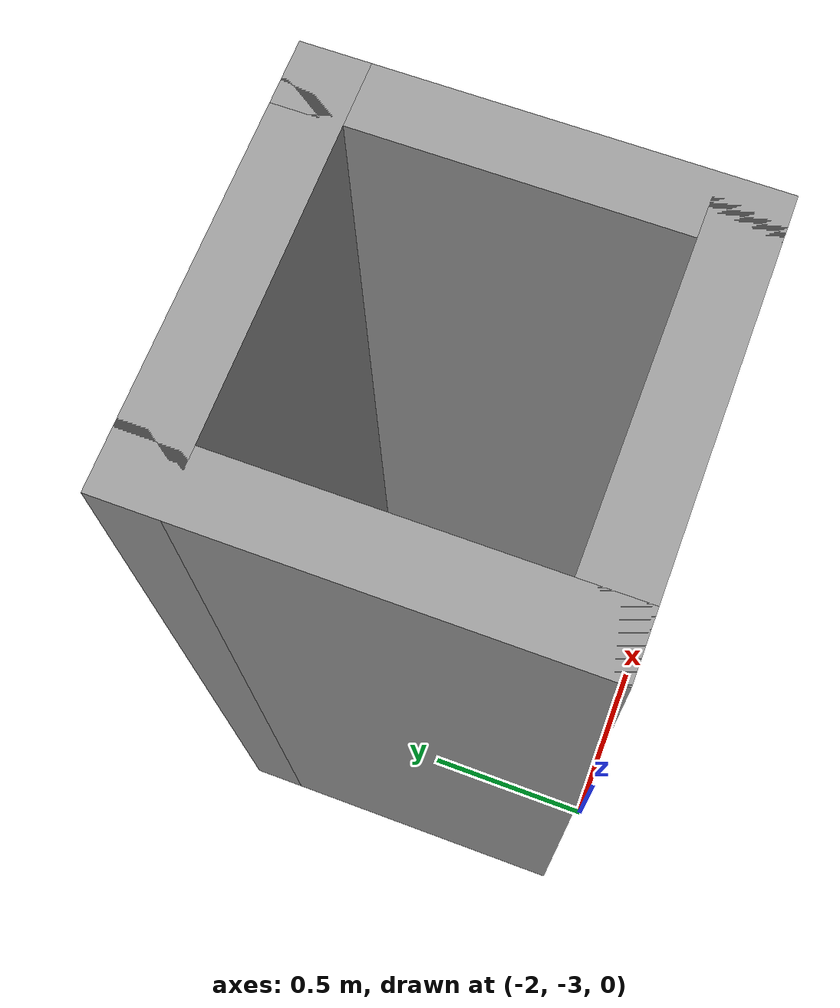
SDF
<?xml version='1.0'?>
<sdf version='1.7'>
  <model name='box1m'>
    <pose>-1.1175 -1.4775 0 0 -0 0</pose>
    <link name='Wall_0'>
      <collision name='Wall_0_Collision'>
        <geometry>
          <box>
            <size>1 0.15 2.5</size>
          </box>
        </geometry>
        <pose>0 0 1.25 0 -0 0</pose>
      </collision>
      <visual name='Wall_0_Visual'>
        <pose>0 0 1.25 0 -0 0</pose>
        <geometry>
          <box>
            <size>1 0.15 2.5</size>
          </box>
        </geometry>
        <material>
          <script>
            <uri>file://media/materials/scripts/gazebo.material</uri>
            <name>Gazebo/Grey</name>
          </script>
          <ambient>1 1 1 1</ambient>
        </material>
        <meta>
          <layer>0</layer>
        </meta>
      </visual>
      <pose>-1.0425 -0.9775 0 0 -0 -1.5708</pose>
    </link>
    <link name='Wall_1'>
      <collision name='Wall_1_Collision'>
        <geometry>
          <box>
            <size>1 0.15 2.5</size>
          </box>
        </geometry>
        <pose>0 0 1.25 0 -0 0</pose>
      </collision>
      <visual name='Wall_1_Visual'>
        <pose>0 0 1.25 0 -0 0</pose>
        <geometry>
          <box>
            <size>1 0.15 2.5</size>
          </box>
        </geometry>
        <material>
          <script>
            <uri>file://media/materials/scripts/gazebo.material</uri>
            <name>Gazebo/Grey</name>
          </script>
          <ambient>1 1 1 1</ambient>
        </material>
        <meta>
          <layer>0</layer>
        </meta>
      </visual>
      <pose>-0.6175 -1.4025 0 0 -0 0</pose>
    </link>
    <link name='Wall_2'>
      <collision name='Wall_2_Collision'>
        <geometry>
          <box>
            <size>1 0.15 2.5</size>
          </box>
        </geometry>
        <pose>0 0 1.25 0 -0 0</pose>
      </collision>
      <visual name='Wall_2_Visual'>
        <pose>0 0 1.25 0 -0 0</pose>
        <geometry>
          <box>
            <size>1 0.15 2.5</size>
          </box>
        </geometry>
        <material>
          <script>
            <uri>file://media/materials/scripts/gazebo.material</uri>
            <name>Gazebo/Grey</name>
          </script>
          <ambient>1 1 1 1</ambient>
        </material>
        <meta>
          <layer>0</layer>
        </meta>
      </visual>
      <pose>-0.1925 -0.9775 0 0 -0 1.5708</pose>
    </link>
    <link name='Wall_3'>
      <collision name='Wall_3_Collision'>
        <geometry>
          <box>
            <size>1 0.15 2.5</size>
          </box>
        </geometry>
        <pose>0 0 1.25 0 -0 0</pose>
      </collision>
      <visual name='Wall_3_Visual'>
        <pose>0 0 1.25 0 -0 0</pose>
        <geometry>
          <box>
            <size>1 0.15 2.5</size>
          </box>
        </geometry>
        <material>
          <script>
            <uri>file://media/materials/scripts/gazebo.material</uri>
            <name>Gazebo/Grey</name>
          </script>
          <ambient>1 1 1 1</ambient>
        </material>
        <meta>
          <layer>0</layer>
        </meta>
      </visual>
      <pose>-0.6175 -0.5525 0 0 -0 3.14159</pose>
    </link>
    <static>1</static>
  </model>
</sdf>
